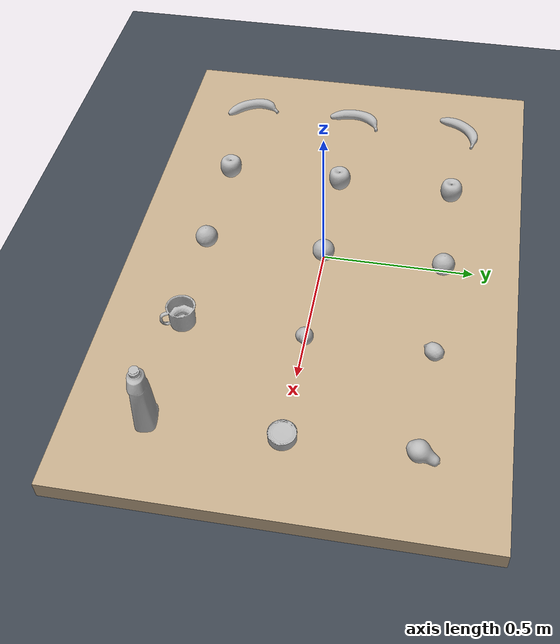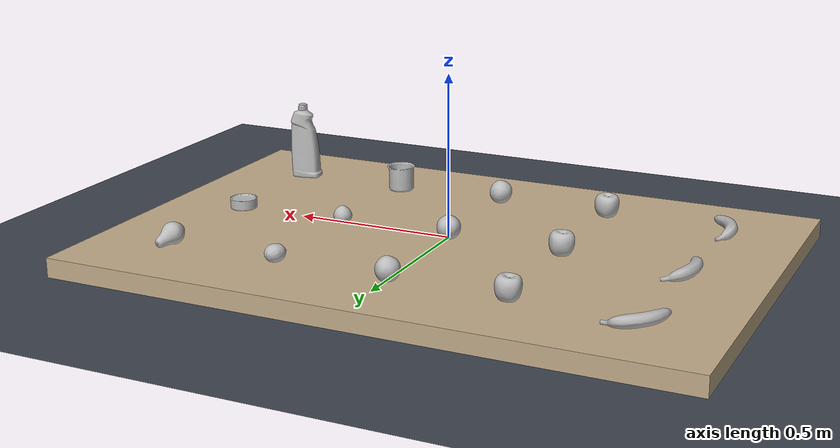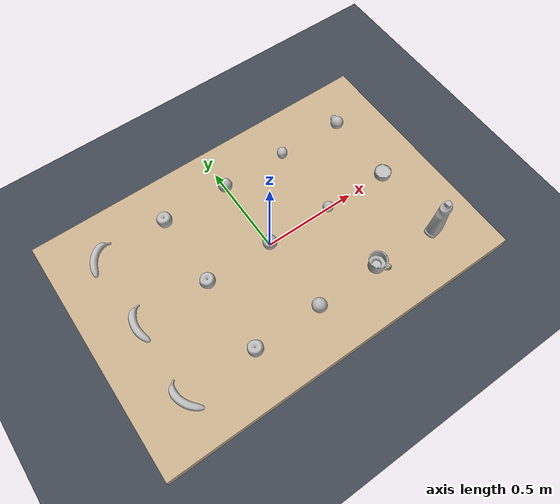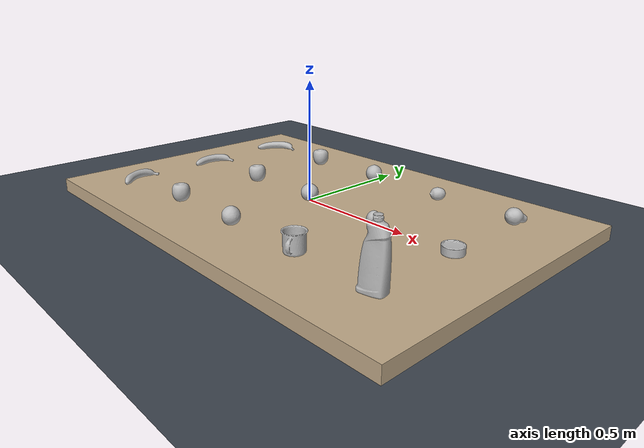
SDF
<?xml version="1.0"?>
<!-- Generated by scripts/build_ycb_inventory_v2_gallery.py.
     Asset-qualification gallery only; not a WP2 dataset scene. -->
<sdf version="1.7">
  <world name="ycb_inventory_v2_gallery">
    <physics name="gallery_physics" type="ode"><max_step_size>0.001</max_step_size><real_time_factor>1.0</real_time_factor></physics>
    <plugin filename="libignition-gazebo-physics-system.so" name="ignition::gazebo::systems::Physics"/>
    <plugin filename="libignition-gazebo-user-commands-system.so" name="ignition::gazebo::systems::UserCommands"/>
    <plugin filename="libignition-gazebo-scene-broadcaster-system.so" name="ignition::gazebo::systems::SceneBroadcaster"/>

    <scene>
      <ambient>0.60 0.60 0.60 1</ambient>
      <background>0.82 0.86 0.91 1</background>
      <shadows>true</shadows>
      <grid>false</grid>
    </scene>
    <light name="key_light" type="directional">
      <pose>-1 -2 3 0 0 0</pose><cast_shadows>true</cast_shadows>
      <diffuse>0.95 0.95 0.95 1</diffuse><specular>0.25 0.25 0.25 1</specular>
      <direction>0.25 0.40 -1.0</direction>
    </light>
    <light name="fill_light" type="point">
      <pose>1.2 -1.2 1.8 0 0 0</pose><cast_shadows>false</cast_shadows>
      <diffuse>0.55 0.58 0.62 1</diffuse><specular>0.10 0.10 0.10 1</specular>
      <attenuation><range>6</range><constant>0.8</constant><linear>0.15</linear><quadratic>0.02</quadratic></attenuation>
    </light>

    <model name="gallery_floor">
      <static>true</static><pose>0 0 -0.061 0 0 0</pose>
      <link name="link"><visual name="visual"><geometry><plane><normal>0 0 1</normal><size>8 8</size></plane></geometry><material><ambient>0.18 0.20 0.23 1</ambient><diffuse>0.24 0.27 0.31 1</diffuse></material></visual></link>
    </model>
    <model name="gallery_table">
      <static>true</static><pose>0 0 -0.030 0 0 0</pose>
      <link name="table_link"><visual name="table_visual"><geometry><box><size>1.95 1.30 0.060</size></box></geometry><material><ambient>0.62 0.54 0.42 1</ambient><diffuse>0.76 0.67 0.54 1</diffuse><specular>0.08 0.08 0.08 1</specular></material></visual></link>
    </model>

    <model name="ycb_banana_01">
      <static>true</static>
      <pose>-0.720000 0.400000 0.018376 0.000000 0.000000 -0.400000</pose>
      <link name="object_link">
        <visual name="ycb_visual">
          <pose>-0.011491 0.007339 -0.017956 0.000000 0.000000 0.000000</pose>
          <geometry><mesh><uri>../models/ycb/011_banana/011_banana.obj</uri></mesh></geometry>
        </visual>
      </link>
      <plugin filename="ignition-gazebo-label-system" name="ignition::gazebo::systems::Label"><label>101</label></plugin>
    </model>

    <model name="ycb_apple_01">
      <static>true</static>
      <pose>-0.360000 0.400000 0.035953 0.000000 0.000000 0.000000</pose>
      <link name="object_link">
        <visual name="ycb_visual">
          <pose>-0.000863 0.003786 -0.035541 0.000000 0.000000 0.000000</pose>
          <geometry><mesh><uri>../models/ycb/013_apple/013_apple.obj</uri></mesh></geometry>
        </visual>
      </link>
      <plugin filename="ignition-gazebo-label-system" name="ignition::gazebo::systems::Label"><label>102</label></plugin>
    </model>

    <model name="ycb_orange_01">
      <static>true</static>
      <pose>0.000000 0.400000 0.035684 0.000000 0.000000 0.200000</pose>
      <link name="object_link">
        <visual name="ycb_visual">
          <pose>0.006944 0.018358 -0.035408 0.000000 0.000000 0.000000</pose>
          <geometry><mesh><uri>../models/ycb/017_orange/017_orange.obj</uri></mesh></geometry>
        </visual>
      </link>
      <plugin filename="ignition-gazebo-label-system" name="ignition::gazebo::systems::Label"><label>103</label></plugin>
    </model>

    <model name="ycb_lemon_01">
      <static>true</static>
      <pose>0.360000 0.400000 0.026499 0.000000 0.000000 0.300000</pose>
      <link name="object_link">
        <visual name="ycb_visual">
          <pose>0.010581 -0.021648 -0.026273 0.000000 0.000000 0.000000</pose>
          <geometry><mesh><uri>../models/ycb/014_lemon/014_lemon.obj</uri></mesh></geometry>
        </visual>
      </link>
      <plugin filename="ignition-gazebo-label-system" name="ignition::gazebo::systems::Label"><label>104</label></plugin>
    </model>

    <model name="ycb_pear_01">
      <static>true</static>
      <pose>0.720000 0.400000 0.032822 0.000000 0.000000 -0.200000</pose>
      <link name="object_link">
        <visual name="ycb_visual">
          <pose>0.033314 -0.018008 -0.032663 0.000000 0.000000 0.000000</pose>
          <geometry><mesh><uri>../models/ycb/016_pear/016_pear.obj</uri></mesh></geometry>
        </visual>
      </link>
      <plugin filename="ignition-gazebo-label-system" name="ignition::gazebo::systems::Label"><label>105</label></plugin>
    </model>

    <model name="ycb_banana_02">
      <static>true</static>
      <pose>-0.720000 0.000000 0.018376 0.000000 0.000000 0.200000</pose>
      <link name="object_link">
        <visual name="ycb_visual">
          <pose>-0.011491 0.007339 -0.017956 0.000000 0.000000 0.000000</pose>
          <geometry><mesh><uri>../models/ycb/011_banana/011_banana.obj</uri></mesh></geometry>
        </visual>
      </link>
      <plugin filename="ignition-gazebo-label-system" name="ignition::gazebo::systems::Label"><label>106</label></plugin>
    </model>

    <model name="ycb_apple_02">
      <static>true</static>
      <pose>-0.360000 0.000000 0.035953 0.000000 0.000000 0.400000</pose>
      <link name="object_link">
        <visual name="ycb_visual">
          <pose>-0.000863 0.003786 -0.035541 0.000000 0.000000 0.000000</pose>
          <geometry><mesh><uri>../models/ycb/013_apple/013_apple.obj</uri></mesh></geometry>
        </visual>
      </link>
      <plugin filename="ignition-gazebo-label-system" name="ignition::gazebo::systems::Label"><label>107</label></plugin>
    </model>

    <model name="ycb_orange_02">
      <static>true</static>
      <pose>0.000000 0.000000 0.035684 0.000000 0.000000 -0.300000</pose>
      <link name="object_link">
        <visual name="ycb_visual">
          <pose>0.006944 0.018358 -0.035408 0.000000 0.000000 0.000000</pose>
          <geometry><mesh><uri>../models/ycb/017_orange/017_orange.obj</uri></mesh></geometry>
        </visual>
      </link>
      <plugin filename="ignition-gazebo-label-system" name="ignition::gazebo::systems::Label"><label>108</label></plugin>
    </model>

    <model name="ycb_plum_01">
      <static>true</static>
      <pose>0.360000 0.000000 0.026525 0.000000 0.000000 0.600000</pose>
      <link name="object_link">
        <visual name="ycb_visual">
          <pose>0.007799 -0.019438 -0.026225 0.000000 0.000000 0.000000</pose>
          <geometry><mesh><uri>../models/ycb/018_plum/018_plum.obj</uri></mesh></geometry>
        </visual>
      </link>
      <plugin filename="ignition-gazebo-label-system" name="ignition::gazebo::systems::Label"><label>109</label></plugin>
    </model>

    <model name="ycb_tuna_fish_can_01">
      <static>true</static>
      <pose>0.720000 0.000000 0.016764 0.000000 0.000000 0.100000</pose>
      <link name="object_link">
        <visual name="ycb_visual">
          <pose>0.026034 0.022121 -0.013578 0.000000 0.000000 0.000000</pose>
          <geometry><mesh><uri>../models/ycb/007_tuna_fish_can/007_tuna_fish_can.obj</uri></mesh></geometry>
        </visual>
      </link>
      <plugin filename="ignition-gazebo-label-system" name="ignition::gazebo::systems::Label"><label>110</label></plugin>
    </model>

    <model name="ycb_banana_03">
      <static>true</static>
      <pose>-0.720000 -0.400000 0.018376 0.000000 0.000000 0.700000</pose>
      <link name="object_link">
        <visual name="ycb_visual">
          <pose>-0.011491 0.007339 -0.017956 0.000000 0.000000 0.000000</pose>
          <geometry><mesh><uri>../models/ycb/011_banana/011_banana.obj</uri></mesh></geometry>
        </visual>
      </link>
      <plugin filename="ignition-gazebo-label-system" name="ignition::gazebo::systems::Label"><label>111</label></plugin>
    </model>

    <model name="ycb_apple_03">
      <static>true</static>
      <pose>-0.360000 -0.400000 0.035953 0.000000 0.000000 -0.500000</pose>
      <link name="object_link">
        <visual name="ycb_visual">
          <pose>-0.000863 0.003786 -0.035541 0.000000 0.000000 0.000000</pose>
          <geometry><mesh><uri>../models/ycb/013_apple/013_apple.obj</uri></mesh></geometry>
        </visual>
      </link>
      <plugin filename="ignition-gazebo-label-system" name="ignition::gazebo::systems::Label"><label>112</label></plugin>
    </model>

    <model name="ycb_orange_03">
      <static>true</static>
      <pose>0.000000 -0.400000 0.035684 0.000000 0.000000 0.500000</pose>
      <link name="object_link">
        <visual name="ycb_visual">
          <pose>0.006944 0.018358 -0.035408 0.000000 0.000000 0.000000</pose>
          <geometry><mesh><uri>../models/ycb/017_orange/017_orange.obj</uri></mesh></geometry>
        </visual>
      </link>
      <plugin filename="ignition-gazebo-label-system" name="ignition::gazebo::systems::Label"><label>113</label></plugin>
    </model>

    <model name="ycb_mug_01">
      <static>true</static>
      <pose>0.360000 -0.400000 0.040677 0.000000 0.000000 -1.000000</pose>
      <link name="object_link">
        <visual name="ycb_visual">
          <pose>0.008853 -0.017342 -0.040107 0.000000 0.000000 0.000000</pose>
          <geometry><mesh><uri>../models/ycb/025_mug/025_mug.obj</uri></mesh></geometry>
        </visual>
      </link>
      <plugin filename="ignition-gazebo-label-system" name="ignition::gazebo::systems::Label"><label>114</label></plugin>
    </model>

    <model name="ycb_bleach_cleanser_01">
      <static>true</static>
      <pose>0.720000 -0.400000 0.125304 0.000000 0.000000 0.200000</pose>
      <link name="object_link">
        <visual name="ycb_visual">
          <pose>0.021651 -0.011692 -0.124828 0.000000 0.000000 0.000000</pose>
          <geometry><mesh><uri>../models/ycb/021_bleach_cleanser/021_bleach_cleanser.obj</uri></mesh></geometry>
        </visual>
      </link>
      <plugin filename="ignition-gazebo-label-system" name="ignition::gazebo::systems::Label"><label>115</label></plugin>
    </model>

    <gui fullscreen="0">
      <plugin filename="MinimalScene" name="3D View">
        <ignition-gui><title>YCB inventory V2 — 15 instances</title><property type="bool" key="showTitleBar">true</property><property type="string" key="state">docked</property></ignition-gui>
        <engine>ogre2</engine><scene>scene</scene>
        <ambient_light>0.55 0.55 0.55</ambient_light><background_color>0.82 0.86 0.91</background_color>
        <camera_pose>0 -2.30 1.45 0 0.52 1.570796</camera_pose>
        <camera_clip><near>0.05</near><far>100</far></camera_clip>
      </plugin>
      <plugin filename="GzSceneManager" name="Scene Manager"><ignition-gui><property key="state" type="string">floating</property><property key="showTitleBar" type="bool">false</property></ignition-gui></plugin>
      <plugin filename="InteractiveViewControl" name="Interactive view control"><ignition-gui><property key="state" type="string">floating</property><property key="showTitleBar" type="bool">false</property></ignition-gui></plugin>
      <plugin filename="EntityContextMenuPlugin" name="Entity context menu"><ignition-gui><property key="state" type="string">floating</property><property key="showTitleBar" type="bool">false</property></ignition-gui></plugin>
      <plugin filename="EntityTree" name="Entity tree"><ignition-gui><property type="bool" key="showTitleBar">true</property><property type="string" key="state">docked</property></ignition-gui></plugin>
    </gui>
  </world>
</sdf>
